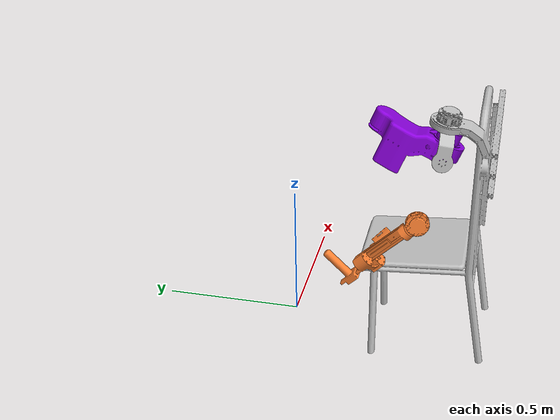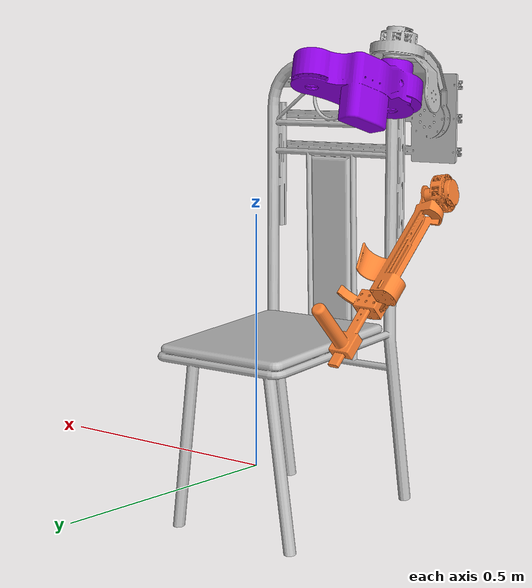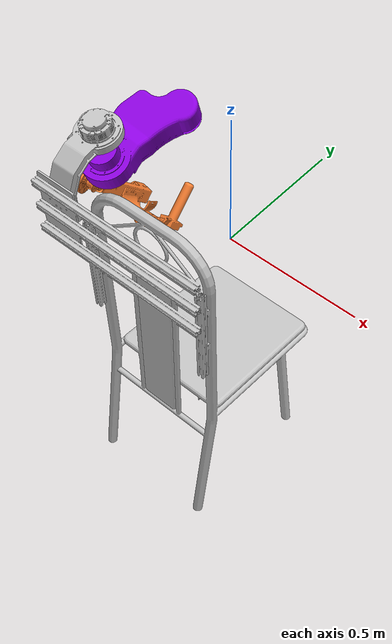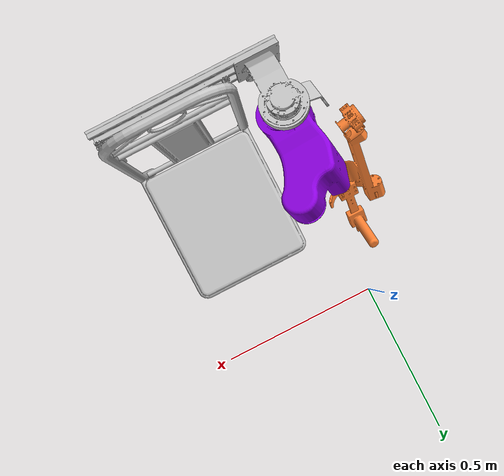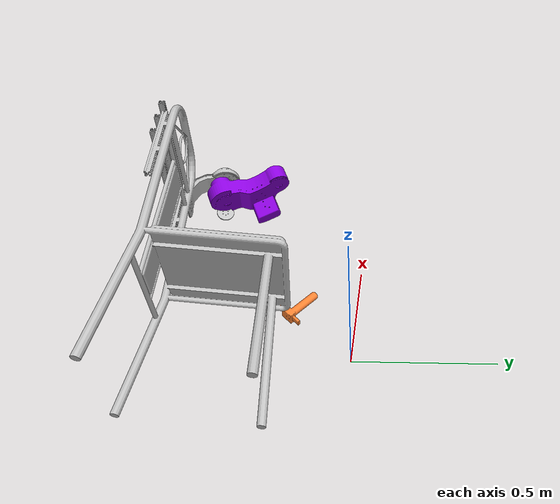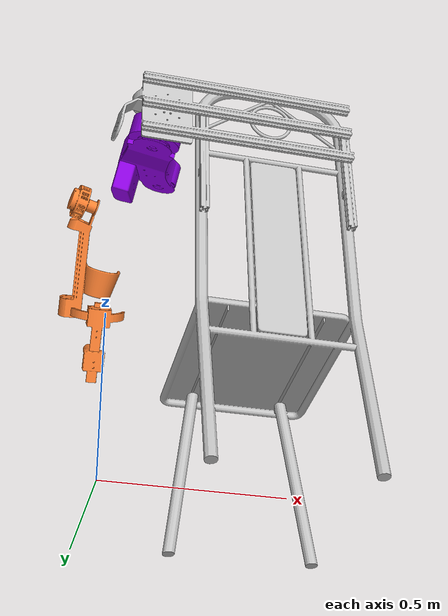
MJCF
<mujoco model="gim_arm">
  <compiler angle="radian"/>

  <asset>
    <mesh name="base_link" content_type="model/stl" file="meshes/base_link.STL"/>
    <mesh name="shoulder_link" content_type="model/stl" file="meshes/shoulder_link.STL"/>
    <mesh name="upper_arm_link" content_type="model/stl" file="meshes/upper_arm_link.STL"/>
    <mesh name="lower_arm_link" content_type="model/stl" file="meshes/lower_arm_link.STL"/>
  </asset>

  <worldbody>
    <geom type="mesh" rgba="0.752941 0.752941 0.752941 1" mesh="base_link"/>
    <body name="shoulder_link" pos="0.031381 -0.48621 0.64846" quat="0.710699 0.0685299 0.695938 0.0766885">
      <inertial pos="-0.166449 0.0056888 -0.0172849" quat="0.953505 0.00316386 -0.300899 -0.0166541" mass="0.190733" diaginertia="0.000256936 0.000237054 0.000102196"/>
      <joint name="base_joint" pos="0 0 0" axis="0.999316 -0.0310989 -0.0199989" range="-0.7121 1.0226" actuatorfrcrange="-5 5"/>
      <geom type="mesh" rgba="0.752941 0.752941 0.752941 1" mesh="shoulder_link"/>
      <body name="upper_arm_link" pos="-0.049966 0.001555 0.00099995" quat="0.508268 -0.392326 -0.503467 0.578156">
        <inertial pos="-0.0207367 0.102616 -0.0918424" quat="0.663565 -0.00524028 0.0607563 0.745629" mass="1.15563" diaginertia="0.00533537 0.00465501 0.00100501"/>
        <joint name="shoulder_joint" pos="0 0 0" axis="0 -1 0" range="-0.2366 1.3435" actuatorfrcrange="-5 5"/>
        <geom type="mesh" rgba="0.545098 0 0.870588 1" mesh="upper_arm_link"/>
        <body name="lower_arm_link" pos="-0.014232 0 -0.21358" quat="0.584973 -0.584975 0.397246 0.397247">
          <inertial pos="0.18527 0.00970989 0.0463326" quat="0.0339146 0.77458 0.0270247 0.630988" mass="0.846777" diaginertia="0.00187451 0.00160639 0.00058703"/>
          <joint name="elbow_joint" pos="0 0 0" axis="0 0 -1" range="-0.2336 1.7762" actuatorfrcrange="-5 5"/>
          <geom type="mesh" rgba="1 0.509804 0.196078 1" mesh="lower_arm_link"/>
        </body>
      </body>
    </body>
  </worldbody>
</mujoco>
